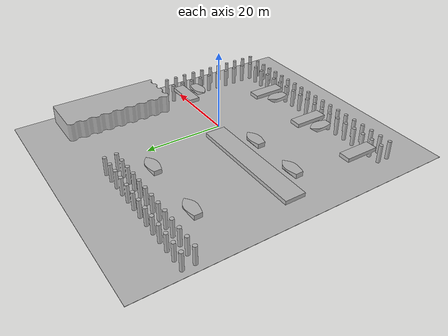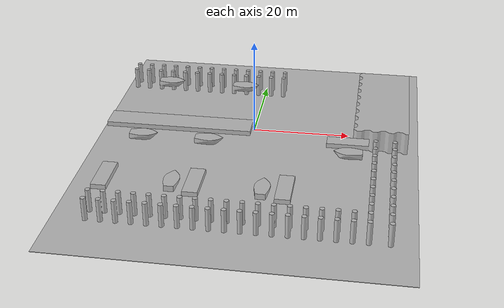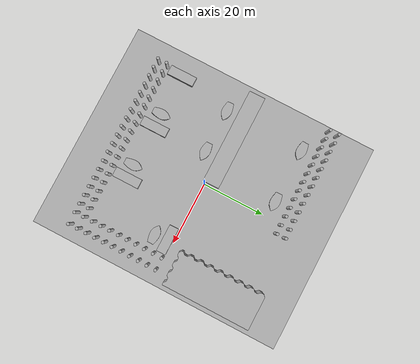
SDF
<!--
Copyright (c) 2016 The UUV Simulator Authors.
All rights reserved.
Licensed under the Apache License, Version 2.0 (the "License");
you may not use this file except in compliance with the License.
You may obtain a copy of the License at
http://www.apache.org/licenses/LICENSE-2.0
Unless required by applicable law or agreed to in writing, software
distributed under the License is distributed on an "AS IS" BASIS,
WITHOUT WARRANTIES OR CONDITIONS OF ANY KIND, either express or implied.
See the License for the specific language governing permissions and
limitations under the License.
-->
<?xml version="1.0" ?>
<sdf version="1.5">
  <world name="RFAL_land">
    <physics name="default_physics" default="true" type="ode">
      <max_step_size>0.002</max_step_size>
      <real_time_factor>1</real_time_factor>
      <real_time_update_rate>500</real_time_update_rate>
      <ode>
        <solver>
          <type>quick</type>
          <iters>50</iters>
          <sor>0.5</sor>
        </solver>
      </ode>
    </physics>
    <scene>
      <ambient>0.01 0.01 0.01 1.0</ambient>
      <sky>
        <clouds>
          <speed>12</speed>
        </clouds>
      </sky>
      <shadows>1</shadows>
      <fog>
        <color>0.1 0.2 0.3 1.0</color>
        <type>linear</type>
        <density>0.001</density>
        <start>10</start>
        <end>200</end>
      </fog>
    </scene>

    <!-- Origin placed somewhere in the middle of the North Sea  -->
    <spherical_coordinates>
      <latitude_deg>56.71897669633431</latitude_deg>
      <longitude_deg>3.515625</longitude_deg>
    </spherical_coordinates>

    <!-- Global light source -->
    <include>
      <uri>model://sun</uri>
    </include>

    <!-- Bounding box with sea surface -->
    <include>
      <uri>model://RFAL_land</uri>
      <pose>0 0 0 0 0 0</pose>
    </include>

    <plugin name="underwater_current_plugin" filename="libuuv_underwater_current_ros_plugin.so">
      <namespace>hydrodynamics</namespace>
      <constant_current>
        <topic>current_velocity</topic>
        <velocity>
          <mean>0</mean>
          <min>0</min>
          <max>5</max>
          <mu>0.0</mu>
          <noiseAmp>0.0</noiseAmp>
        </velocity>

        <horizontal_angle>
          <mean>0</mean>
          <min>-3.141592653589793238</min>
          <max>3.141592653589793238</max>
          <mu>0.0</mu>
          <noiseAmp>0.0</noiseAmp>
        </horizontal_angle>

        <vertical_angle>
          <mean>0</mean>
          <min>-3.141592653589793238</min>
          <max>3.141592653589793238</max>
          <mu>0.0</mu>
          <noiseAmp>0.0</noiseAmp>
        </vertical_angle>
      </constant_current>
    </plugin>

    <plugin name="sc_interface" filename="libuuv_sc_ros_interface_plugin.so"/>

  </world>
</sdf>

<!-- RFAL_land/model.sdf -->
<sdf version="1.5">

  <model name="RFAL_land">
    <static>true</static>
    <link name="link">
      <visual name="ground">
        <cast_shadows>false</cast_shadows>
        <pose>0 0 -5 0 0 0</pose>
        <geometry>
          <box>
            <size>70 85 .1</size>
          </box>
        </geometry>
        <material>
          <script>
            <uri>file://Media/materials/scripts/sand.material</uri>
            <name>UUVSimulator/SandAndStones</name>
          </script>
        </material>
      </visual>

      <collision name="ground">
        <pose>0 0 -5 0 0 0</pose>
        <geometry>
          <box>
            <size>70 85 .1</size>
          </box>
        </geometry>
      </collision>

      <visual name="platform">
          <cast_shadows>false</cast_shadows>
          <pose>0 0 -2.5960578 0 0 0</pose>
          <geometry>
              <mesh><uri>model://RFAL_land/meshes/testing_world_rev_2.stl</uri><scale>1 1 1 </scale></mesh>
          </geometry>

      </visual>

      <collision name="platform">
          <pose>0 0 -2.5960578 0 0 0</pose>
          <geometry>
              <mesh><uri>model://RFAL_land/meshes/testing_world_rev_2.stl</uri><scale>1 1 1</scale></mesh>
          </geometry>
      </collision>

    </link>
  </model>
</sdf>
